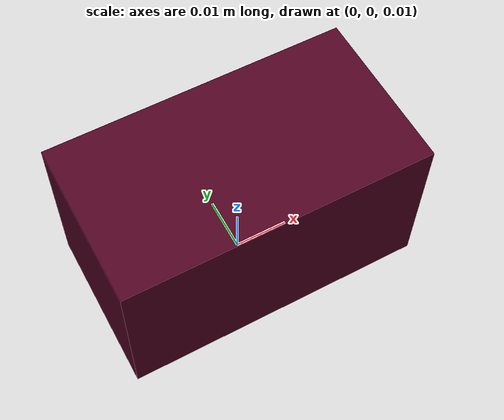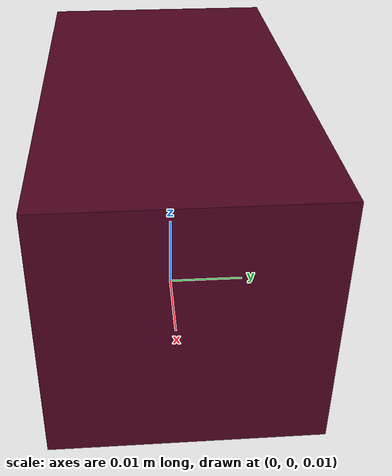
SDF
<?xml version="1.0"?>
<sdf version="1.7">
  <model name="foam_brick">
    <link name="base_link">
      <inertial>
        <pose>0 0 0.025 0 0 0 </pose>
        <mass>0.028</mass>
        <inertia>
          <ixx>1.17e-5</ixx>
          <ixy>0</ixy>
          <ixz>0</ixz>
          <iyy>1.9e-5</iyy>
          <iyz>0</iyz>
          <izz>1.9e-5</izz>
        </inertia>
      </inertial>
      <visual name="base_link">
        <pose>0 0 0.025 0 0 0</pose>
        <geometry>
          <box>
            <size>0.055 0.03 0.03</size>
          </box>
        </geometry>
        <material>
          <diffuse>0.31 0.01 0.13 1.0</diffuse>
        </material>
      </visual>
      <collision name="box_collision">
        <pose>0 0 0.025 0 0 0</pose>
        <geometry>
          <box>
            <size>0.054 0.029 0.029</size>
          </box>
        </geometry>
        <drake:proximity_properties>
          <drake:compliant_hydroelastic/>
          <drake:hydroelastic_modulus>1.0e5</drake:hydroelastic_modulus>
        </drake:proximity_properties>
      </collision>
    </link>
  </model>
</sdf>
